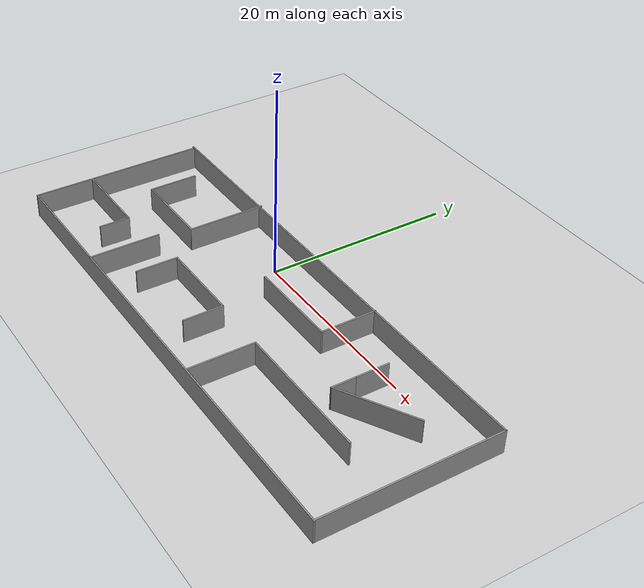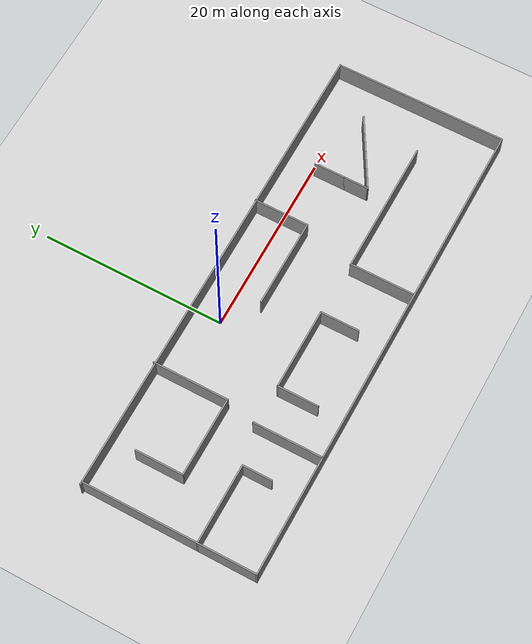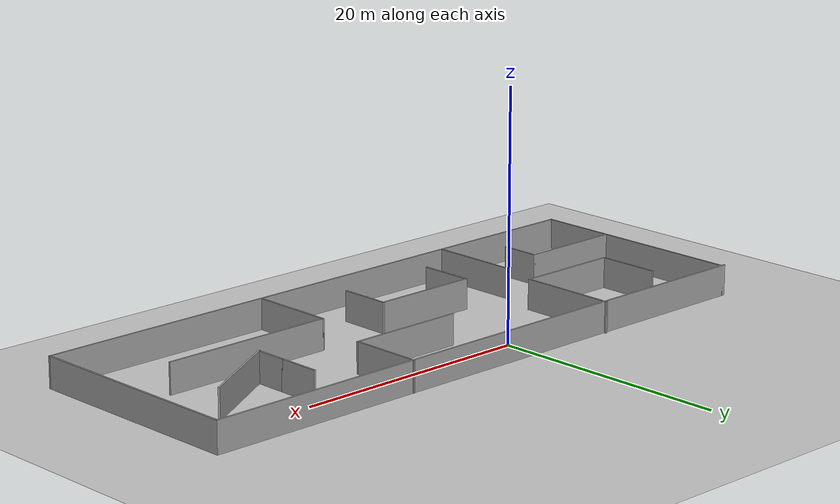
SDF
<sdf version="1.7">
 <world name="default">
  <light name="sun" type="directional">
   <pose>0 0 10 0 -0 0</pose>
   <diffuse>0.8 0.8 0.8 1</diffuse>
   <specular>0.2 0.2 0.2 1</specular>
   <attenuation>
    <range>1000</range>
    <constant>0.9</constant>
    <linear>0.01</linear>
    <quadratic>0.001</quadratic>
   </attenuation>
   <direction>-0.5 0.1 -0.9</direction>
   <spot><inner_angle>0</inner_angle><outer_angle>0</outer_angle><falloff>0</falloff></spot>
  </light>
  <model name="ground_plane">
   <static>1</static>
   <link name="link">
    <collision name="collision">
     <geometry><plane><normal>0 0 1</normal><size>100 100</size></plane></geometry>
     <surface>
      <contact><collide_bitmask>65535</collide_bitmask></contact>
      <friction><ode><mu>100</mu><mu2>50</mu2></ode></friction>
     </surface>
    </collision>
    <visual name="visual">
     <cast_shadows>0</cast_shadows>
     <geometry><plane><normal>0 0 1</normal><size>100 100</size></plane></geometry>
     <material>
      <script><uri>file://media/materials/scripts/gazebo.material</uri><name>Gazebo/Grey</name></script>
     </material>
    </visual>
   </link>
  </model>
  <gravity>0 0 -9.8</gravity>
  <magnetic_field>6e-06 2.3e-05 -4.2e-05</magnetic_field>
  <atmosphere type="adiabatic"/>
  <physics type="ode">
   <max_step_size>0.001</max_step_size>
   <real_time_factor>1</real_time_factor>
   <real_time_update_rate>1000</real_time_update_rate>
  </physics>
  <scene><ambient>0.4 0.4 0.4 1</ambient><background>0.7 0.7 0.7 1</background><shadows>1</shadows></scene>
  <audio><device>default</device></audio>
  <spherical_coordinates>
   <surface_model>EARTH_WGS84</surface_model>
   <latitude_deg>0</latitude_deg>
   <longitude_deg>0</longitude_deg>
   <elevation>0</elevation>
   <heading_deg>0</heading_deg>
  </spherical_coordinates>
  <model name="Untitled">
   <pose>4.61687 -4.26746 -0 0 -0 0</pose>
   <link name="Wall_35">
    <collision name="Wall_35_Collision">
     <geometry><box><size>52.5 0.15 2.5</size></box></geometry>
     <pose>0 0 1.25 0 -0 0</pose>
    </collision>
    <visual name="Wall_35_Visual">
     <pose>0 0 1.25 0 -0 0</pose>
     <geometry><box><size>52.5 0.15 2.5</size></box></geometry>
     <material>
      <script><uri>file://media/materials/scripts/gazebo.material</uri><name>Gazebo/Grey</name></script>
      <ambient>1 1 1 1</ambient>
     </material>
     <meta><layer>0</layer></meta>
    </visual>
    <pose>-0 7.10199 0 0 -0 0</pose>
   </link>
   <link name="Wall_36">
    <collision name="Wall_36_Collision">
     <geometry><box><size>18.75 0.15 2.5</size></box></geometry>
     <pose>0 0 1.25 0 -0 0</pose>
    </collision>
    <visual name="Wall_36_Visual">
     <pose>0 0 1.25 0 -0 0</pose>
     <geometry><box><size>18.75 0.15 2.5</size></box></geometry>
     <material>
      <script><uri>file://media/materials/scripts/gazebo.material</uri><name>Gazebo/Grey</name></script>
      <ambient>1 1 1 1</ambient>
     </material>
     <meta><layer>0</layer></meta>
    </visual>
    <pose>26.175 -2.19801 0 0 -0 -1.5708</pose>
   </link>
   <link name="Wall_37">
    <collision name="Wall_37_Collision">
     <geometry><box><size>52.25 0.15 2.5</size></box></geometry>
     <pose>0 0 1.25 0 -0 0</pose>
    </collision>
    <visual name="Wall_37_Visual">
     <pose>0 0 1.25 0 -0 0</pose>
     <geometry><box><size>52.25 0.15 2.5</size></box></geometry>
     <material>
      <script><uri>file://media/materials/scripts/gazebo.material</uri><name>Gazebo/Grey</name></script>
      <ambient>1 1 1 1</ambient>
     </material>
     <meta><layer>0</layer></meta>
    </visual>
    <pose>0.125 -11.498 0 0 -0 3.14159</pose>
   </link>
   <link name="Wall_38">
    <collision name="Wall_38_Collision">
     <geometry><box><size>18.75 0.15 2.5</size></box></geometry>
     <pose>0 0 1.25 0 -0 0</pose>
    </collision>
    <visual name="Wall_38_Visual">
     <pose>0 0 1.25 0 -0 0</pose>
     <geometry><box><size>18.75 0.15 2.5</size></box></geometry>
     <material>
      <script><uri>file://media/materials/scripts/gazebo.material</uri><name>Gazebo/Grey</name></script>
      <ambient>1 1 1 1</ambient>
     </material>
     <meta><layer>0</layer></meta>
    </visual>
    <pose>-25.925 -2.19801 0 0 -0 1.5708</pose>
   </link>
   <link name="Wall_40">
    <collision name="Wall_40_Collision">
     <geometry><box><size>5.25 0.15 2.5</size></box></geometry>
     <pose>0 0 1.25 0 -0 0</pose>
    </collision>
    <visual name="Wall_40_Visual">
     <pose>0 0 1.25 0 -0 0</pose>
     <geometry><box><size>5.25 0.15 2.5</size></box></geometry>
     <material>
      <script><uri>file://media/materials/scripts/gazebo.material</uri><name>Gazebo/Grey</name></script>
      <ambient>1 1 1 1</ambient>
     </material>
     <meta><layer>0</layer></meta>
    </visual>
    <pose>-20.8221 1.72171 0 0 -0 -1.5708</pose>
   </link>
   <link name="Wall_41">
    <collision name="Wall_41_Collision">
     <geometry><box><size>8.75 0.15 2.5</size></box></geometry>
     <pose>0 0 1.25 0 -0 0</pose>
    </collision>
    <visual name="Wall_41_Visual">
     <pose>0 0 1.25 0 -0 0</pose>
     <geometry><box><size>8.75 0.15 2.5</size></box></geometry>
     <material>
      <script><uri>file://media/materials/scripts/gazebo.material</uri><name>Gazebo/Grey</name></script>
      <ambient>1 1 1 1</ambient>
     </material>
     <meta><layer>0</layer></meta>
    </visual>
    <pose>-16.5221 -0.828289 0 0 -0 0</pose>
   </link>
   <link name="Wall_42">
    <collision name="Wall_42_Collision">
     <geometry><box><size>8.25 0.15 2.5</size></box></geometry>
     <pose>0 0 1.25 0 -0 0</pose>
    </collision>
    <visual name="Wall_42_Visual">
     <pose>0 0 1.25 0 -0 0</pose>
     <geometry><box><size>8.25 0.15 2.5</size></box></geometry>
     <material>
      <script><uri>file://media/materials/scripts/gazebo.material</uri><name>Gazebo/Grey</name></script>
      <ambient>1 1 1 1</ambient>
     </material>
     <meta><layer>0</layer></meta>
    </visual>
    <pose>-12.2221 3.22171 0 0 -0 1.5708</pose>
   </link>
   <link name="Wall_44">
    <collision name="Wall_44_Collision">
     <geometry><box><size>8.75 0.15 2.5</size></box></geometry>
     <pose>0 0 1.25 0 -0 0</pose>
    </collision>
    <visual name="Wall_44_Visual">
     <pose>0 0 1.25 0 -0 0</pose>
     <geometry><box><size>8.75 0.15 2.5</size></box></geometry>
     <material>
      <script><uri>file://media/materials/scripts/gazebo.material</uri><name>Gazebo/Grey</name></script>
      <ambient>1 1 1 1</ambient>
     </material>
     <meta><layer>0</layer></meta>
    </visual>
    <pose>-21.6289 -5.26511 0 0 -0 0</pose>
   </link>
   <link name="Wall_45">
    <collision name="Wall_45_Collision">
     <geometry><box><size>3.25 0.15 2.5</size></box></geometry>
     <pose>0 0 1.25 0 -0 0</pose>
    </collision>
    <visual name="Wall_45_Visual">
     <pose>0 0 1.25 0 -0 0</pose>
     <geometry><box><size>3.25 0.15 2.5</size></box></geometry>
     <material>
      <script><uri>file://media/materials/scripts/gazebo.material</uri><name>Gazebo/Grey</name></script>
      <ambient>1 1 1 1</ambient>
     </material>
     <meta><layer>0</layer></meta>
    </visual>
    <pose>-17.3289 -6.81511 0 0 -0 -1.5708</pose>
   </link>
   <link name="Wall_47">
    <collision name="Wall_47_Collision">
     <geometry><box><size>7.5 0.15 2.5</size></box></geometry>
     <pose>0 0 1.25 0 -0 0</pose>
    </collision>
    <visual name="Wall_47_Visual">
     <pose>0 0 1.25 0 -0 0</pose>
     <geometry><box><size>7.5 0.15 2.5</size></box></geometry>
     <material>
      <script><uri>file://media/materials/scripts/gazebo.material</uri><name>Gazebo/Grey</name></script>
      <ambient>1 1 1 1</ambient>
     </material>
     <meta><layer>0</layer></meta>
    </visual>
    <pose>-13.0696 -7.77108 0 0 -0 -1.5708</pose>
   </link>
   <link name="Wall_49">
    <collision name="Wall_49_Collision">
     <geometry><box><size>9 0.15 2.5</size></box></geometry>
     <pose>0 0 1.25 0 -0 0</pose>
    </collision>
    <visual name="Wall_49_Visual">
     <pose>0 0 1.25 0 -0 0</pose>
     <geometry><box><size>9 0.15 2.5</size></box></geometry>
     <material>
      <script><uri>file://media/materials/scripts/gazebo.material</uri><name>Gazebo/Grey</name></script>
      <ambient>1 1 1 1</ambient>
     </material>
     <meta><layer>0</layer></meta>
    </visual>
    <pose>-4.26607 -4.34219 0 0 -0 3.14159</pose>
   </link>
   <link name="Wall_50">
    <collision name="Wall_50_Collision">
     <geometry><box><size>4.5 0.15 2.5</size></box></geometry>
     <pose>0 0 1.25 0 -0 0</pose>
    </collision>
    <visual name="Wall_50_Visual">
     <pose>0 0 1.25 0 -0 0</pose>
     <geometry><box><size>4.5 0.15 2.5</size></box></geometry>
     <material>
      <script><uri>file://media/materials/scripts/gazebo.material</uri><name>Gazebo/Grey</name></script>
      <ambient>1 1 1 1</ambient>
     </material>
     <meta><layer>0</layer></meta>
    </visual>
    <pose>-8.69107 -6.51719 0 0 -0 -1.5708</pose>
   </link>
   <link name="Wall_52">
    <collision name="Wall_52_Collision">
     <geometry><box><size>6 0.15 2.5</size></box></geometry>
     <pose>0 0 1.25 0 -0 0</pose>
    </collision>
    <visual name="Wall_52_Visual">
     <pose>0 0 1.25 0 -0 0</pose>
     <geometry><box><size>6 0.15 2.5</size></box></geometry>
     <material>
      <script><uri>file://media/materials/scripts/gazebo.material</uri><name>Gazebo/Grey</name></script>
      <ambient>1 1 1 1</ambient>
     </material>
     <meta><layer>0</layer></meta>
    </visual>
    <pose>7.97297 4.23852 0 0 -0 -1.5708</pose>
   </link>
   <link name="Wall_53">
    <collision name="Wall_53_Collision">
     <geometry><box><size>9.75 0.15 2.5</size></box></geometry>
     <pose>0 0 1.25 0 -0 0</pose>
    </collision>
    <visual name="Wall_53_Visual">
     <pose>0 0 1.25 0 -0 0</pose>
     <geometry><box><size>9.75 0.15 2.5</size></box></geometry>
     <material>
      <script><uri>file://media/materials/scripts/gazebo.material</uri><name>Gazebo/Grey</name></script>
      <ambient>1 1 1 1</ambient>
     </material>
     <meta><layer>0</layer></meta>
    </visual>
    <pose>3.17297 1.31352 0 0 -0 3.14159</pose>
   </link>
   <link name="Wall_55">
    <collision name="Wall_55_Collision">
     <geometry><box><size>4.25 0.15 2.5</size></box></geometry>
     <pose>0 0 1.25 0 -0 0</pose>
    </collision>
    <visual name="Wall_55_Visual">
     <pose>0 0 1.25 0 -0 0</pose>
     <geometry><box><size>4.25 0.15 2.5</size></box></geometry>
     <material>
      <script><uri>file://media/materials/scripts/gazebo.material</uri><name>Gazebo/Grey</name></script>
      <ambient>1 1 1 1</ambient>
     </material>
     <meta><layer>0</layer></meta>
    </visual>
    <pose>0.158931 -6.39219 0 0 -0 -1.5708</pose>
   </link>
   <link name="Wall_57">
    <collision name="Wall_57_Collision">
     <geometry><box><size>7 0.15 2.5</size></box></geometry>
     <pose>0 0 1.25 0 -0 0</pose>
    </collision>
    <visual name="Wall_57_Visual">
     <pose>0 0 1.25 0 -0 0</pose>
     <geometry><box><size>7 0.15 2.5</size></box></geometry>
     <material>
      <script><uri>file://media/materials/scripts/gazebo.material</uri><name>Gazebo/Grey</name></script>
      <ambient>1 1 1 1</ambient>
     </material>
     <meta><layer>0</layer></meta>
    </visual>
    <pose>6.18866 -7.93137 0 0 -0 1.5708</pose>
   </link>
   <link name="Wall_58">
    <collision name="Wall_58_Collision">
     <geometry><box><size>14.75 0.15 2.5</size></box></geometry>
     <pose>0 0 1.25 0 -0 0</pose>
    </collision>
    <visual name="Wall_58_Visual">
     <pose>0 0 1.25 0 -0 0</pose>
     <geometry><box><size>14.75 0.15 2.5</size></box></geometry>
     <material>
      <script><uri>file://media/materials/scripts/gazebo.material</uri><name>Gazebo/Grey</name></script>
      <ambient>1 1 1 1</ambient>
     </material>
     <meta><layer>0</layer></meta>
    </visual>
    <pose>13.4887 -4.50637 0 0 -0 0</pose>
   </link>
   <link name="Wall_60">
    <collision name="Wall_60_Collision">
     <geometry><box><size>3.5 0.15 2.5</size></box></geometry>
     <pose>0 0 1.25 0 -0 0</pose>
    </collision>
    <visual name="Wall_60_Visual">
     <pose>0 0 1.25 0 -0 0</pose>
     <geometry><box><size>3.5 0.15 2.5</size></box></geometry>
     <material>
      <script><uri>file://media/materials/scripts/gazebo.material</uri><name>Gazebo/Grey</name></script>
      <ambient>1 1 1 1</ambient>
     </material>
     <meta><layer>0</layer></meta>
    </visual>
    <pose>14.5565 2.19351 0 0 -0 1.5708</pose>
   </link>
   <link name="Wall_62">
    <collision name="Wall_62_Collision">
     <geometry><box><size>2.75 0.15 2.5</size></box></geometry>
     <pose>0 0 1.25 0 -0 0</pose>
    </collision>
    <visual name="Wall_62_Visual">
     <pose>0 0 1.25 0 -0 0</pose>
     <geometry><box><size>2.75 0.15 2.5</size></box></geometry>
     <material>
      <script><uri>file://media/materials/scripts/gazebo.material</uri><name>Gazebo/Grey</name></script>
      <ambient>1 1 1 1</ambient>
     </material>
     <meta><layer>0</layer></meta>
    </visual>
    <pose>14.5565 -0.781489 0 0 -0 -1.5708</pose>
   </link>
   <link name="Wall_63">
    <collision name="Wall_63_Collision">
     <geometry><box><size>8.5 0.15 2.5</size></box></geometry>
     <pose>0 0 1.25 0 -0 0</pose>
    </collision>
    <visual name="Wall_63_Visual">
     <pose>0 0 1.25 0 -0 0</pose>
     <geometry><box><size>8.5 0.15 2.5</size></box></geometry>
     <material>
      <script><uri>file://media/materials/scripts/gazebo.material</uri><name>Gazebo/Grey</name></script>
      <ambient>1 1 1 1</ambient>
     </material>
     <meta><layer>0</layer></meta>
    </visual>
    <pose>18.1721 0.00601 0 0 -0 0.523599</pose>
   </link>
   <static>1</static>
  </model>
 </world>
</sdf>
